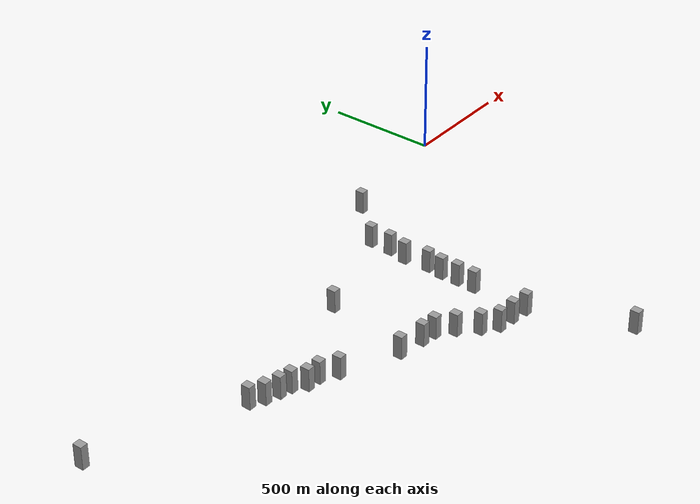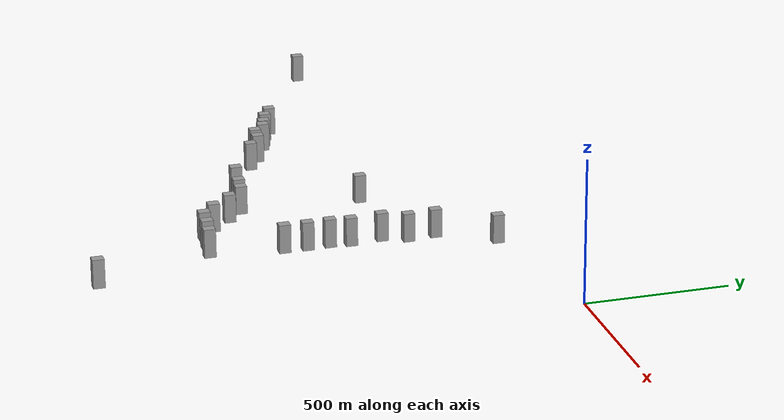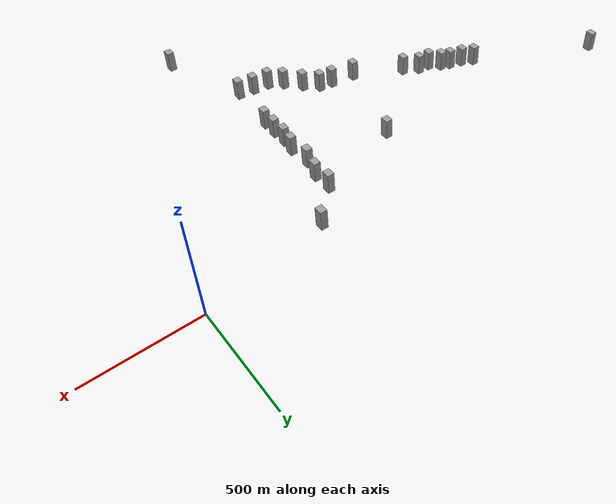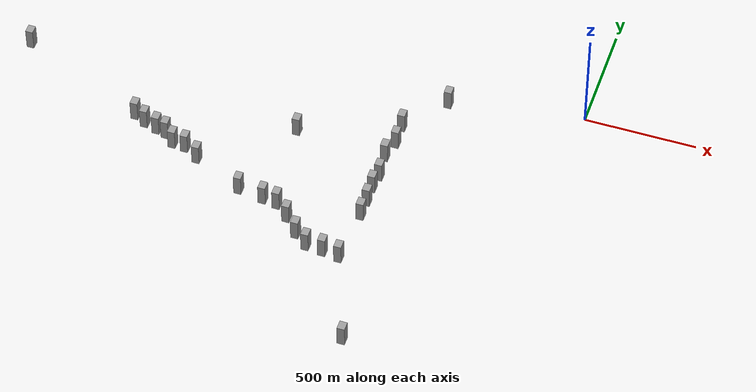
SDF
<sdf version="1.7">
 <world name="default">
  <model name="huge_building_131">
   <link name="link">
    <inertial>
     <mass>137299</mass>
     <inertia>
      <ixx>1.37911e+08</ixx>
      <ixy>0</ixy>
      <ixz>0</ixz>
      <iyy>1.32035e+08</iyy>
      <iyz>0</iyz>
      <izz>3.13216e+07</izz>
     </inertia>
    </inertial>
    <visual name="visual">
     <geometry><box><size>33.3468 40.3177 102.117</size></box></geometry>
     <material>
      <script><name>Gazebo/Grey</name><uri>file://media/materials/scripts/gazebo.material</uri></script>
      <shader type="pixel"/>
     </material>
    </visual>
    <collision name="collision">
     <geometry><box><size>33.3468 40.3177 102.117</size></box></geometry>
     <surface>
      <friction>
       <ode><mu>1</mu><mu2>1</mu2><fdir1>0 0 0</fdir1><slip1>0</slip1><slip2>0</slip2></ode>
       <torsional>
        <coefficient>1</coefficient>
        <patch_radius>0</patch_radius>
        <surface_radius>0</surface_radius>
        <use_patch_radius>1</use_patch_radius>
        <ode><slip>0</slip></ode>
       </torsional>
      </friction>
      <bounce><restitution_coefficient>0</restitution_coefficient><threshold>1e+06</threshold></bounce>
      <contact>
       <collide_without_contact>0</collide_without_contact>
       <collide_without_contact_bitmask>1</collide_without_contact_bitmask>
       <collide_bitmask>1</collide_bitmask>
       <ode>
        <soft_cfm>0</soft_cfm>
        <soft_erp>0.2</soft_erp>
        <kp>1e+13</kp>
        <kd>1</kd>
        <max_vel>0.01</max_vel>
        <min_depth>0</min_depth>
       </ode>
       <bullet>
        <split_impulse>1</split_impulse>
        <split_impulse_penetration_threshold>-0.01</split_impulse_penetration_threshold>
        <soft_cfm>0</soft_cfm>
        <soft_erp>0.2</soft_erp>
        <kp>1e+13</kp>
        <kd>1</kd>
       </bullet>
      </contact>
     </surface>
    </collision>
   </link>
   <static>0</static>
   <pose>-758.046 -721.537 25 0 -0 0</pose>
  </model>
  <model name="huge_building_132">
   <link name="link">
    <inertial>
     <mass>137299</mass>
     <inertia>
      <ixx>1.37911e+08</ixx>
      <ixy>0</ixy>
      <ixz>0</ixz>
      <iyy>1.32035e+08</iyy>
      <iyz>0</iyz>
      <izz>3.13216e+07</izz>
     </inertia>
    </inertial>
    <visual name="visual">
     <geometry><box><size>33.3468 40.3177 102.117</size></box></geometry>
     <material>
      <script><name>Gazebo/Grey</name><uri>file://media/materials/scripts/gazebo.material</uri></script>
      <shader type="pixel"/>
     </material>
    </visual>
    <collision name="collision">
     <geometry><box><size>33.3468 40.3177 102.117</size></box></geometry>
     <surface>
      <friction>
       <ode><mu>1</mu><mu2>1</mu2><fdir1>0 0 0</fdir1><slip1>0</slip1><slip2>0</slip2></ode>
       <torsional>
        <coefficient>1</coefficient>
        <patch_radius>0</patch_radius>
        <surface_radius>0</surface_radius>
        <use_patch_radius>1</use_patch_radius>
        <ode><slip>0</slip></ode>
       </torsional>
      </friction>
      <bounce><restitution_coefficient>0</restitution_coefficient><threshold>1e+06</threshold></bounce>
      <contact>
       <collide_without_contact>0</collide_without_contact>
       <collide_without_contact_bitmask>1</collide_without_contact_bitmask>
       <collide_bitmask>1</collide_bitmask>
       <ode>
        <soft_cfm>0</soft_cfm>
        <soft_erp>0.2</soft_erp>
        <kp>1e+13</kp>
        <kd>1</kd>
        <max_vel>0.01</max_vel>
        <min_depth>0</min_depth>
       </ode>
       <bullet>
        <split_impulse>1</split_impulse>
        <split_impulse_penetration_threshold>-0.01</split_impulse_penetration_threshold>
        <soft_cfm>0</soft_cfm>
        <soft_erp>0.2</soft_erp>
        <kp>1e+13</kp>
        <kd>1</kd>
       </bullet>
      </contact>
     </surface>
    </collision>
   </link>
   <static>0</static>
   <pose>-760.644 -642.928 25 0 -0 0</pose>
  </model>
  <model name="huge_building_133">
   <link name="link">
    <inertial>
     <mass>137299</mass>
     <inertia>
      <ixx>1.37911e+08</ixx>
      <ixy>0</ixy>
      <ixz>0</ixz>
      <iyy>1.32035e+08</iyy>
      <iyz>0</iyz>
      <izz>3.13216e+07</izz>
     </inertia>
    </inertial>
    <visual name="visual">
     <geometry><box><size>33.3468 40.3177 102.117</size></box></geometry>
     <material>
      <script><name>Gazebo/Grey</name><uri>file://media/materials/scripts/gazebo.material</uri></script>
      <shader type="pixel"/>
     </material>
    </visual>
    <collision name="collision">
     <geometry><box><size>33.3468 40.3177 102.117</size></box></geometry>
     <surface>
      <friction>
       <ode><mu>1</mu><mu2>1</mu2><fdir1>0 0 0</fdir1><slip1>0</slip1><slip2>0</slip2></ode>
       <torsional>
        <coefficient>1</coefficient>
        <patch_radius>0</patch_radius>
        <surface_radius>0</surface_radius>
        <use_patch_radius>1</use_patch_radius>
        <ode><slip>0</slip></ode>
       </torsional>
      </friction>
      <bounce><restitution_coefficient>0</restitution_coefficient><threshold>1e+06</threshold></bounce>
      <contact>
       <collide_without_contact>0</collide_without_contact>
       <collide_without_contact_bitmask>1</collide_without_contact_bitmask>
       <collide_bitmask>1</collide_bitmask>
       <ode>
        <soft_cfm>0</soft_cfm>
        <soft_erp>0.2</soft_erp>
        <kp>1e+13</kp>
        <kd>1</kd>
        <max_vel>0.01</max_vel>
        <min_depth>0</min_depth>
       </ode>
       <bullet>
        <split_impulse>1</split_impulse>
        <split_impulse_penetration_threshold>-0.01</split_impulse_penetration_threshold>
        <soft_cfm>0</soft_cfm>
        <soft_erp>0.2</soft_erp>
        <kp>1e+13</kp>
        <kd>1</kd>
       </bullet>
      </contact>
     </surface>
    </collision>
   </link>
   <static>0</static>
   <pose>-752.26 -571.161 25 0 -0 0</pose>
  </model>
  <model name="huge_building_134">
   <link name="link">
    <inertial>
     <mass>137299</mass>
     <inertia>
      <ixx>1.37911e+08</ixx>
      <ixy>0</ixy>
      <ixz>0</ixz>
      <iyy>1.32035e+08</iyy>
      <iyz>0</iyz>
      <izz>3.13216e+07</izz>
     </inertia>
    </inertial>
    <visual name="visual">
     <geometry><box><size>33.3468 40.3177 102.117</size></box></geometry>
     <material>
      <script><name>Gazebo/Grey</name><uri>file://media/materials/scripts/gazebo.material</uri></script>
      <shader type="pixel"/>
     </material>
    </visual>
    <collision name="collision">
     <geometry><box><size>33.3468 40.3177 102.117</size></box></geometry>
     <surface>
      <friction>
       <ode><mu>1</mu><mu2>1</mu2><fdir1>0 0 0</fdir1><slip1>0</slip1><slip2>0</slip2></ode>
       <torsional>
        <coefficient>1</coefficient>
        <patch_radius>0</patch_radius>
        <surface_radius>0</surface_radius>
        <use_patch_radius>1</use_patch_radius>
        <ode><slip>0</slip></ode>
       </torsional>
      </friction>
      <bounce><restitution_coefficient>0</restitution_coefficient><threshold>1e+06</threshold></bounce>
      <contact>
       <collide_without_contact>0</collide_without_contact>
       <collide_without_contact_bitmask>1</collide_without_contact_bitmask>
       <collide_bitmask>1</collide_bitmask>
       <ode>
        <soft_cfm>0</soft_cfm>
        <soft_erp>0.2</soft_erp>
        <kp>1e+13</kp>
        <kd>1</kd>
        <max_vel>0.01</max_vel>
        <min_depth>0</min_depth>
       </ode>
       <bullet>
        <split_impulse>1</split_impulse>
        <split_impulse_penetration_threshold>-0.01</split_impulse_penetration_threshold>
        <soft_cfm>0</soft_cfm>
        <soft_erp>0.2</soft_erp>
        <kp>1e+13</kp>
        <kd>1</kd>
       </bullet>
      </contact>
     </surface>
    </collision>
   </link>
   <static>0</static>
   <pose>-763.434 -459.57 25 0 -0 0</pose>
  </model>
  <model name="huge_building_135">
   <link name="link">
    <inertial>
     <mass>137299</mass>
     <inertia>
      <ixx>1.37911e+08</ixx>
      <ixy>0</ixy>
      <ixz>0</ixz>
      <iyy>1.32035e+08</iyy>
      <iyz>0</iyz>
      <izz>3.13216e+07</izz>
     </inertia>
    </inertial>
    <visual name="visual">
     <geometry><box><size>33.3468 40.3177 102.117</size></box></geometry>
     <material>
      <script><name>Gazebo/Grey</name><uri>file://media/materials/scripts/gazebo.material</uri></script>
      <shader type="pixel"/>
     </material>
    </visual>
    <collision name="collision">
     <geometry><box><size>33.3468 40.3177 102.117</size></box></geometry>
     <surface>
      <friction>
       <ode><mu>1</mu><mu2>1</mu2><fdir1>0 0 0</fdir1><slip1>0</slip1><slip2>0</slip2></ode>
       <torsional>
        <coefficient>1</coefficient>
        <patch_radius>0</patch_radius>
        <surface_radius>0</surface_radius>
        <use_patch_radius>1</use_patch_radius>
        <ode><slip>0</slip></ode>
       </torsional>
      </friction>
      <bounce><restitution_coefficient>0</restitution_coefficient><threshold>1e+06</threshold></bounce>
      <contact>
       <collide_without_contact>0</collide_without_contact>
       <collide_without_contact_bitmask>1</collide_without_contact_bitmask>
       <collide_bitmask>1</collide_bitmask>
       <ode>
        <soft_cfm>0</soft_cfm>
        <soft_erp>0.2</soft_erp>
        <kp>1e+13</kp>
        <kd>1</kd>
        <max_vel>0.01</max_vel>
        <min_depth>0</min_depth>
       </ode>
       <bullet>
        <split_impulse>1</split_impulse>
        <split_impulse_penetration_threshold>-0.01</split_impulse_penetration_threshold>
        <soft_cfm>0</soft_cfm>
        <soft_erp>0.2</soft_erp>
        <kp>1e+13</kp>
        <kd>1</kd>
       </bullet>
      </contact>
     </surface>
    </collision>
   </link>
   <static>0</static>
   <pose>-743.608 -370.234 20 0 -0 0</pose>
  </model>
  <model name="huge_building_136">
   <link name="link">
    <inertial>
     <mass>137299</mass>
     <inertia>
      <ixx>1.37911e+08</ixx>
      <ixy>0</ixy>
      <ixz>0</ixz>
      <iyy>1.32035e+08</iyy>
      <iyz>0</iyz>
      <izz>3.13216e+07</izz>
     </inertia>
    </inertial>
    <visual name="visual">
     <geometry><box><size>33.3468 40.3177 102.117</size></box></geometry>
     <material>
      <script><name>Gazebo/Grey</name><uri>file://media/materials/scripts/gazebo.material</uri></script>
      <shader type="pixel"/>
     </material>
    </visual>
    <collision name="collision">
     <geometry><box><size>33.3468 40.3177 102.117</size></box></geometry>
     <surface>
      <friction>
       <ode><mu>1</mu><mu2>1</mu2><fdir1>0 0 0</fdir1><slip1>0</slip1><slip2>0</slip2></ode>
       <torsional>
        <coefficient>1</coefficient>
        <patch_radius>0</patch_radius>
        <surface_radius>0</surface_radius>
        <use_patch_radius>1</use_patch_radius>
        <ode><slip>0</slip></ode>
       </torsional>
      </friction>
      <bounce><restitution_coefficient>0</restitution_coefficient><threshold>1e+06</threshold></bounce>
      <contact>
       <collide_without_contact>0</collide_without_contact>
       <collide_without_contact_bitmask>1</collide_without_contact_bitmask>
       <collide_bitmask>1</collide_bitmask>
       <ode>
        <soft_cfm>0</soft_cfm>
        <soft_erp>0.2</soft_erp>
        <kp>1e+13</kp>
        <kd>1</kd>
        <max_vel>0.01</max_vel>
        <min_depth>0</min_depth>
       </ode>
       <bullet>
        <split_impulse>1</split_impulse>
        <split_impulse_penetration_threshold>-0.01</split_impulse_penetration_threshold>
        <soft_cfm>0</soft_cfm>
        <soft_erp>0.2</soft_erp>
        <kp>1e+13</kp>
        <kd>1</kd>
       </bullet>
      </contact>
     </surface>
    </collision>
   </link>
   <static>0</static>
   <pose>-746.695 -273.359 23 0 -0 0</pose>
  </model>
  <model name="huge_building_138">
   <link name="link">
    <inertial>
     <mass>137299</mass>
     <inertia>
      <ixx>1.37911e+08</ixx>
      <ixy>0</ixy>
      <ixz>0</ixz>
      <iyy>1.32035e+08</iyy>
      <iyz>0</iyz>
      <izz>3.13216e+07</izz>
     </inertia>
    </inertial>
    <visual name="visual">
     <geometry><box><size>33.3468 40.3177 102.117</size></box></geometry>
     <material>
      <script><name>Gazebo/Grey</name><uri>file://media/materials/scripts/gazebo.material</uri></script>
      <shader type="pixel"/>
     </material>
    </visual>
    <collision name="collision">
     <geometry><box><size>33.3468 40.3177 102.117</size></box></geometry>
     <surface>
      <friction>
       <ode><mu>1</mu><mu2>1</mu2><fdir1>0 0 0</fdir1><slip1>0</slip1><slip2>0</slip2></ode>
       <torsional>
        <coefficient>1</coefficient>
        <patch_radius>0</patch_radius>
        <surface_radius>0</surface_radius>
        <use_patch_radius>1</use_patch_radius>
        <ode><slip>0</slip></ode>
       </torsional>
      </friction>
      <bounce><restitution_coefficient>0</restitution_coefficient><threshold>1e+06</threshold></bounce>
      <contact>
       <collide_without_contact>0</collide_without_contact>
       <collide_without_contact_bitmask>1</collide_without_contact_bitmask>
       <collide_bitmask>1</collide_bitmask>
       <ode>
        <soft_cfm>0</soft_cfm>
        <soft_erp>0.2</soft_erp>
        <kp>1e+13</kp>
        <kd>1</kd>
        <max_vel>0.01</max_vel>
        <min_depth>0</min_depth>
       </ode>
       <bullet>
        <split_impulse>1</split_impulse>
        <split_impulse_penetration_threshold>-0.01</split_impulse_penetration_threshold>
        <soft_cfm>0</soft_cfm>
        <soft_erp>0.2</soft_erp>
        <kp>1e+13</kp>
        <kd>1</kd>
       </bullet>
      </contact>
     </surface>
    </collision>
   </link>
   <static>0</static>
   <pose>-758.682 -802.767 25 0 -0 0</pose>
  </model>
  <model name="huge_building_139">
   <link name="link">
    <inertial>
     <mass>137299</mass>
     <inertia>
      <ixx>1.37911e+08</ixx>
      <ixy>0</ixy>
      <ixz>0</ixz>
      <iyy>1.32035e+08</iyy>
      <iyz>0</iyz>
      <izz>3.13216e+07</izz>
     </inertia>
    </inertial>
    <visual name="visual">
     <geometry><box><size>33.3468 40.3177 102.117</size></box></geometry>
     <material>
      <script><name>Gazebo/Grey</name><uri>file://media/materials/scripts/gazebo.material</uri></script>
      <shader type="pixel"/>
     </material>
    </visual>
    <collision name="collision">
     <geometry><box><size>33.3468 40.3177 102.117</size></box></geometry>
     <surface>
      <friction>
       <ode><mu>1</mu><mu2>1</mu2><fdir1>0 0 0</fdir1><slip1>0</slip1><slip2>0</slip2></ode>
       <torsional>
        <coefficient>1</coefficient>
        <patch_radius>0</patch_radius>
        <surface_radius>0</surface_radius>
        <use_patch_radius>1</use_patch_radius>
        <ode><slip>0</slip></ode>
       </torsional>
      </friction>
      <bounce><restitution_coefficient>0</restitution_coefficient><threshold>1e+06</threshold></bounce>
      <contact>
       <collide_without_contact>0</collide_without_contact>
       <collide_without_contact_bitmask>1</collide_without_contact_bitmask>
       <collide_bitmask>1</collide_bitmask>
       <ode>
        <soft_cfm>0</soft_cfm>
        <soft_erp>0.2</soft_erp>
        <kp>1e+13</kp>
        <kd>1</kd>
        <max_vel>0.01</max_vel>
        <min_depth>0</min_depth>
       </ode>
       <bullet>
        <split_impulse>1</split_impulse>
        <split_impulse_penetration_threshold>-0.01</split_impulse_penetration_threshold>
        <soft_cfm>0</soft_cfm>
        <soft_erp>0.2</soft_erp>
        <kp>1e+13</kp>
        <kd>1</kd>
       </bullet>
      </contact>
     </surface>
    </collision>
   </link>
   <static>0</static>
   <pose>-771.371 -1058.88 35 0 -0 0</pose>
  </model>
  <model name="huge_building_140">
   <link name="link">
    <inertial>
     <mass>137299</mass>
     <inertia>
      <ixx>1.37911e+08</ixx>
      <ixy>0</ixy>
      <ixz>0</ixz>
      <iyy>1.32035e+08</iyy>
      <iyz>0</iyz>
      <izz>3.13216e+07</izz>
     </inertia>
    </inertial>
    <visual name="visual">
     <geometry><box><size>33.3468 40.3177 102.117</size></box></geometry>
     <material>
      <script><name>Gazebo/Grey</name><uri>file://media/materials/scripts/gazebo.material</uri></script>
      <shader type="pixel"/>
     </material>
    </visual>
    <collision name="collision">
     <geometry><box><size>33.3468 40.3177 102.117</size></box></geometry>
     <surface>
      <friction>
       <ode><mu>1</mu><mu2>1</mu2><fdir1>0 0 0</fdir1><slip1>0</slip1><slip2>0</slip2></ode>
       <torsional>
        <coefficient>1</coefficient>
        <patch_radius>0</patch_radius>
        <surface_radius>0</surface_radius>
        <use_patch_radius>1</use_patch_radius>
        <ode><slip>0</slip></ode>
       </torsional>
      </friction>
      <bounce><restitution_coefficient>0</restitution_coefficient><threshold>1e+06</threshold></bounce>
      <contact>
       <collide_without_contact>0</collide_without_contact>
       <collide_without_contact_bitmask>1</collide_without_contact_bitmask>
       <collide_bitmask>1</collide_bitmask>
       <ode>
        <soft_cfm>0</soft_cfm>
        <soft_erp>0.2</soft_erp>
        <kp>1e+13</kp>
        <kd>1</kd>
        <max_vel>0.01</max_vel>
        <min_depth>0</min_depth>
       </ode>
       <bullet>
        <split_impulse>1</split_impulse>
        <split_impulse_penetration_threshold>-0.01</split_impulse_penetration_threshold>
        <soft_cfm>0</soft_cfm>
        <soft_erp>0.2</soft_erp>
        <kp>1e+13</kp>
        <kd>1</kd>
       </bullet>
      </contact>
     </surface>
    </collision>
   </link>
   <static>0</static>
   <pose>-846.893 -1048.65 35 0 -0 0</pose>
  </model>
  <model name="huge_building_141">
   <link name="link">
    <inertial>
     <mass>137299</mass>
     <inertia>
      <ixx>1.37911e+08</ixx>
      <ixy>0</ixy>
      <ixz>0</ixz>
      <iyy>1.32035e+08</iyy>
      <iyz>0</iyz>
      <izz>3.13216e+07</izz>
     </inertia>
    </inertial>
    <visual name="visual">
     <geometry><box><size>33.3468 40.3177 102.117</size></box></geometry>
     <material>
      <script><name>Gazebo/Grey</name><uri>file://media/materials/scripts/gazebo.material</uri></script>
      <shader type="pixel"/>
     </material>
    </visual>
    <collision name="collision">
     <geometry><box><size>33.3468 40.3177 102.117</size></box></geometry>
     <surface>
      <friction>
       <ode><mu>1</mu><mu2>1</mu2><fdir1>0 0 0</fdir1><slip1>0</slip1><slip2>0</slip2></ode>
       <torsional>
        <coefficient>1</coefficient>
        <patch_radius>0</patch_radius>
        <surface_radius>0</surface_radius>
        <use_patch_radius>1</use_patch_radius>
        <ode><slip>0</slip></ode>
       </torsional>
      </friction>
      <bounce><restitution_coefficient>0</restitution_coefficient><threshold>1e+06</threshold></bounce>
      <contact>
       <collide_without_contact>0</collide_without_contact>
       <collide_without_contact_bitmask>1</collide_without_contact_bitmask>
       <collide_bitmask>1</collide_bitmask>
       <ode>
        <soft_cfm>0</soft_cfm>
        <soft_erp>0.2</soft_erp>
        <kp>1e+13</kp>
        <kd>1</kd>
        <max_vel>0.01</max_vel>
        <min_depth>0</min_depth>
       </ode>
       <bullet>
        <split_impulse>1</split_impulse>
        <split_impulse_penetration_threshold>-0.01</split_impulse_penetration_threshold>
        <soft_cfm>0</soft_cfm>
        <soft_erp>0.2</soft_erp>
        <kp>1e+13</kp>
        <kd>1</kd>
       </bullet>
      </contact>
     </surface>
    </collision>
   </link>
   <static>0</static>
   <pose>-924.248 -1041.06 35 0 -0 0</pose>
  </model>
  <model name="huge_building_142">
   <link name="link">
    <inertial>
     <mass>137299</mass>
     <inertia>
      <ixx>1.37911e+08</ixx>
      <ixy>0</ixy>
      <ixz>0</ixz>
      <iyy>1.32035e+08</iyy>
      <iyz>0</iyz>
      <izz>3.13216e+07</izz>
     </inertia>
    </inertial>
    <visual name="visual">
     <geometry><box><size>33.3468 40.3177 102.117</size></box></geometry>
     <material>
      <script><name>Gazebo/Grey</name><uri>file://media/materials/scripts/gazebo.material</uri></script>
      <shader type="pixel"/>
     </material>
    </visual>
    <collision name="collision">
     <geometry><box><size>33.3468 40.3177 102.117</size></box></geometry>
     <surface>
      <friction>
       <ode><mu>1</mu><mu2>1</mu2><fdir1>0 0 0</fdir1><slip1>0</slip1><slip2>0</slip2></ode>
       <torsional>
        <coefficient>1</coefficient>
        <patch_radius>0</patch_radius>
        <surface_radius>0</surface_radius>
        <use_patch_radius>1</use_patch_radius>
        <ode><slip>0</slip></ode>
       </torsional>
      </friction>
      <bounce><restitution_coefficient>0</restitution_coefficient><threshold>1e+06</threshold></bounce>
      <contact>
       <collide_without_contact>0</collide_without_contact>
       <collide_without_contact_bitmask>1</collide_without_contact_bitmask>
       <collide_bitmask>1</collide_bitmask>
       <ode>
        <soft_cfm>0</soft_cfm>
        <soft_erp>0.2</soft_erp>
        <kp>1e+13</kp>
        <kd>1</kd>
        <max_vel>0.01</max_vel>
        <min_depth>0</min_depth>
       </ode>
       <bullet>
        <split_impulse>1</split_impulse>
        <split_impulse_penetration_threshold>-0.01</split_impulse_penetration_threshold>
        <soft_cfm>0</soft_cfm>
        <soft_erp>0.2</soft_erp>
        <kp>1e+13</kp>
        <kd>1</kd>
       </bullet>
      </contact>
     </surface>
    </collision>
   </link>
   <static>0</static>
   <pose>-986.086 -993.867 35 0 -0 0</pose>
  </model>
  <model name="huge_building_143">
   <link name="link">
    <inertial>
     <mass>137299</mass>
     <inertia>
      <ixx>1.37911e+08</ixx>
      <ixy>0</ixy>
      <ixz>0</ixz>
      <iyy>1.32035e+08</iyy>
      <iyz>0</iyz>
      <izz>3.13216e+07</izz>
     </inertia>
    </inertial>
    <visual name="visual">
     <geometry><box><size>33.3468 40.3177 102.117</size></box></geometry>
     <material>
      <script><name>Gazebo/Grey</name><uri>file://media/materials/scripts/gazebo.material</uri></script>
      <shader type="pixel"/>
     </material>
    </visual>
    <collision name="collision">
     <geometry><box><size>33.3468 40.3177 102.117</size></box></geometry>
     <surface>
      <friction>
       <ode><mu>1</mu><mu2>1</mu2><fdir1>0 0 0</fdir1><slip1>0</slip1><slip2>0</slip2></ode>
       <torsional>
        <coefficient>1</coefficient>
        <patch_radius>0</patch_radius>
        <surface_radius>0</surface_radius>
        <use_patch_radius>1</use_patch_radius>
        <ode><slip>0</slip></ode>
       </torsional>
      </friction>
      <bounce><restitution_coefficient>0</restitution_coefficient><threshold>1e+06</threshold></bounce>
      <contact>
       <collide_without_contact>0</collide_without_contact>
       <collide_without_contact_bitmask>1</collide_without_contact_bitmask>
       <collide_bitmask>1</collide_bitmask>
       <ode>
        <soft_cfm>0</soft_cfm>
        <soft_erp>0.2</soft_erp>
        <kp>1e+13</kp>
        <kd>1</kd>
        <max_vel>0.01</max_vel>
        <min_depth>0</min_depth>
       </ode>
       <bullet>
        <split_impulse>1</split_impulse>
        <split_impulse_penetration_threshold>-0.01</split_impulse_penetration_threshold>
        <soft_cfm>0</soft_cfm>
        <soft_erp>0.2</soft_erp>
        <kp>1e+13</kp>
        <kd>1</kd>
       </bullet>
      </contact>
     </surface>
    </collision>
   </link>
   <static>0</static>
   <pose>-1051.47 -922.444 35 0 -0 0</pose>
  </model>
  <model name="huge_building_144">
   <link name="link">
    <inertial>
     <mass>137299</mass>
     <inertia>
      <ixx>1.37911e+08</ixx>
      <ixy>0</ixy>
      <ixz>0</ixz>
      <iyy>1.32035e+08</iyy>
      <iyz>0</iyz>
      <izz>3.13216e+07</izz>
     </inertia>
    </inertial>
    <visual name="visual">
     <geometry><box><size>33.3468 40.3177 102.117</size></box></geometry>
     <material>
      <script><name>Gazebo/Grey</name><uri>file://media/materials/scripts/gazebo.material</uri></script>
      <shader type="pixel"/>
     </material>
    </visual>
    <collision name="collision">
     <geometry><box><size>33.3468 40.3177 102.117</size></box></geometry>
     <surface>
      <friction>
       <ode><mu>1</mu><mu2>1</mu2><fdir1>0 0 0</fdir1><slip1>0</slip1><slip2>0</slip2></ode>
       <torsional>
        <coefficient>1</coefficient>
        <patch_radius>0</patch_radius>
        <surface_radius>0</surface_radius>
        <use_patch_radius>1</use_patch_radius>
        <ode><slip>0</slip></ode>
       </torsional>
      </friction>
      <bounce><restitution_coefficient>0</restitution_coefficient><threshold>1e+06</threshold></bounce>
      <contact>
       <collide_without_contact>0</collide_without_contact>
       <collide_without_contact_bitmask>1</collide_without_contact_bitmask>
       <collide_bitmask>1</collide_bitmask>
       <ode>
        <soft_cfm>0</soft_cfm>
        <soft_erp>0.2</soft_erp>
        <kp>1e+13</kp>
        <kd>1</kd>
        <max_vel>0.01</max_vel>
        <min_depth>0</min_depth>
       </ode>
       <bullet>
        <split_impulse>1</split_impulse>
        <split_impulse_penetration_threshold>-0.01</split_impulse_penetration_threshold>
        <soft_cfm>0</soft_cfm>
        <soft_erp>0.2</soft_erp>
        <kp>1e+13</kp>
        <kd>1</kd>
       </bullet>
      </contact>
     </surface>
    </collision>
   </link>
   <static>0</static>
   <pose>-1114.85 -867.131 35 0 -0 0</pose>
  </model>
  <model name="huge_building_145">
   <link name="link">
    <inertial>
     <mass>137299</mass>
     <inertia>
      <ixx>1.37911e+08</ixx>
      <ixy>0</ixy>
      <ixz>0</ixz>
      <iyy>1.32035e+08</iyy>
      <iyz>0</iyz>
      <izz>3.13216e+07</izz>
     </inertia>
    </inertial>
    <visual name="visual">
     <geometry><box><size>33.3468 40.3177 102.117</size></box></geometry>
     <material>
      <script><name>Gazebo/Grey</name><uri>file://media/materials/scripts/gazebo.material</uri></script>
      <shader type="pixel"/>
     </material>
    </visual>
    <collision name="collision">
     <geometry><box><size>33.3468 40.3177 102.117</size></box></geometry>
     <surface>
      <friction>
       <ode><mu>1</mu><mu2>1</mu2><fdir1>0 0 0</fdir1><slip1>0</slip1><slip2>0</slip2></ode>
       <torsional>
        <coefficient>1</coefficient>
        <patch_radius>0</patch_radius>
        <surface_radius>0</surface_radius>
        <use_patch_radius>1</use_patch_radius>
        <ode><slip>0</slip></ode>
       </torsional>
      </friction>
      <bounce><restitution_coefficient>0</restitution_coefficient><threshold>1e+06</threshold></bounce>
      <contact>
       <collide_without_contact>0</collide_without_contact>
       <collide_without_contact_bitmask>1</collide_without_contact_bitmask>
       <collide_bitmask>1</collide_bitmask>
       <ode>
        <soft_cfm>0</soft_cfm>
        <soft_erp>0.2</soft_erp>
        <kp>1e+13</kp>
        <kd>1</kd>
        <max_vel>0.01</max_vel>
        <min_depth>0</min_depth>
       </ode>
       <bullet>
        <split_impulse>1</split_impulse>
        <split_impulse_penetration_threshold>-0.01</split_impulse_penetration_threshold>
        <soft_cfm>0</soft_cfm>
        <soft_erp>0.2</soft_erp>
        <kp>1e+13</kp>
        <kd>1</kd>
       </bullet>
      </contact>
     </surface>
    </collision>
   </link>
   <static>0</static>
   <pose>-1181.26 -858.132 35 0 -0 0</pose>
  </model>
  <model name="huge_building_146">
   <link name="link">
    <inertial>
     <mass>137299</mass>
     <inertia>
      <ixx>1.37911e+08</ixx>
      <ixy>0</ixy>
      <ixz>0</ixz>
      <iyy>1.32035e+08</iyy>
      <iyz>0</iyz>
      <izz>3.13216e+07</izz>
     </inertia>
    </inertial>
    <visual name="visual">
     <geometry><box><size>33.3468 40.3177 102.117</size></box></geometry>
     <material>
      <script><name>Gazebo/Grey</name><uri>file://media/materials/scripts/gazebo.material</uri></script>
      <shader type="pixel"/>
     </material>
    </visual>
    <collision name="collision">
     <geometry><box><size>33.3468 40.3177 102.117</size></box></geometry>
     <surface>
      <friction>
       <ode><mu>1</mu><mu2>1</mu2><fdir1>0 0 0</fdir1><slip1>0</slip1><slip2>0</slip2></ode>
       <torsional>
        <coefficient>1</coefficient>
        <patch_radius>0</patch_radius>
        <surface_radius>0</surface_radius>
        <use_patch_radius>1</use_patch_radius>
        <ode><slip>0</slip></ode>
       </torsional>
      </friction>
      <bounce><restitution_coefficient>0</restitution_coefficient><threshold>1e+06</threshold></bounce>
      <contact>
       <collide_without_contact>0</collide_without_contact>
       <collide_without_contact_bitmask>1</collide_without_contact_bitmask>
       <collide_bitmask>1</collide_bitmask>
       <ode>
        <soft_cfm>0</soft_cfm>
        <soft_erp>0.2</soft_erp>
        <kp>1e+13</kp>
        <kd>1</kd>
        <max_vel>0.01</max_vel>
        <min_depth>0</min_depth>
       </ode>
       <bullet>
        <split_impulse>1</split_impulse>
        <split_impulse_penetration_threshold>-0.01</split_impulse_penetration_threshold>
        <soft_cfm>0</soft_cfm>
        <soft_erp>0.2</soft_erp>
        <kp>1e+13</kp>
        <kd>1</kd>
       </bullet>
      </contact>
     </surface>
    </collision>
   </link>
   <static>0</static>
   <pose>-1298.21 -839.876 35 0 -0 0</pose>
  </model>
  <model name="huge_building_147">
   <link name="link">
    <inertial>
     <mass>137299</mass>
     <inertia>
      <ixx>1.37911e+08</ixx>
      <ixy>0</ixy>
      <ixz>0</ixz>
      <iyy>1.32035e+08</iyy>
      <iyz>0</iyz>
      <izz>3.13216e+07</izz>
     </inertia>
    </inertial>
    <visual name="visual">
     <geometry><box><size>33.3468 40.3177 102.117</size></box></geometry>
     <material>
      <script><name>Gazebo/Grey</name><uri>file://media/materials/scripts/gazebo.material</uri></script>
      <shader type="pixel"/>
     </material>
    </visual>
    <collision name="collision">
     <geometry><box><size>33.3468 40.3177 102.117</size></box></geometry>
     <surface>
      <friction>
       <ode><mu>1</mu><mu2>1</mu2><fdir1>0 0 0</fdir1><slip1>0</slip1><slip2>0</slip2></ode>
       <torsional>
        <coefficient>1</coefficient>
        <patch_radius>0</patch_radius>
        <surface_radius>0</surface_radius>
        <use_patch_radius>1</use_patch_radius>
        <ode><slip>0</slip></ode>
       </torsional>
      </friction>
      <bounce><restitution_coefficient>0</restitution_coefficient><threshold>1e+06</threshold></bounce>
      <contact>
       <collide_without_contact>0</collide_without_contact>
       <collide_without_contact_bitmask>1</collide_without_contact_bitmask>
       <collide_bitmask>1</collide_bitmask>
       <ode>
        <soft_cfm>0</soft_cfm>
        <soft_erp>0.2</soft_erp>
        <kp>1e+13</kp>
        <kd>1</kd>
        <max_vel>0.01</max_vel>
        <min_depth>0</min_depth>
       </ode>
       <bullet>
        <split_impulse>1</split_impulse>
        <split_impulse_penetration_threshold>-0.01</split_impulse_penetration_threshold>
        <soft_cfm>0</soft_cfm>
        <soft_erp>0.2</soft_erp>
        <kp>1e+13</kp>
        <kd>1</kd>
       </bullet>
      </contact>
     </surface>
    </collision>
   </link>
   <static>0</static>
   <pose>-1530.18 -729.117 27 0 -0 0</pose>
  </model>
  <model name="huge_building_148">
   <link name="link">
    <inertial>
     <mass>137299</mass>
     <inertia>
      <ixx>1.37911e+08</ixx>
      <ixy>0</ixy>
      <ixz>0</ixz>
      <iyy>1.32035e+08</iyy>
      <iyz>0</iyz>
      <izz>3.13216e+07</izz>
     </inertia>
    </inertial>
    <visual name="visual">
     <geometry><box><size>33.3468 40.3177 102.117</size></box></geometry>
     <material>
      <script><name>Gazebo/Grey</name><uri>file://media/materials/scripts/gazebo.material</uri></script>
      <shader type="pixel"/>
     </material>
    </visual>
    <collision name="collision">
     <geometry><box><size>33.3468 40.3177 102.117</size></box></geometry>
     <surface>
      <friction>
       <ode><mu>1</mu><mu2>1</mu2><fdir1>0 0 0</fdir1><slip1>0</slip1><slip2>0</slip2></ode>
       <torsional>
        <coefficient>1</coefficient>
        <patch_radius>0</patch_radius>
        <surface_radius>0</surface_radius>
        <use_patch_radius>1</use_patch_radius>
        <ode><slip>0</slip></ode>
       </torsional>
      </friction>
      <bounce><restitution_coefficient>0</restitution_coefficient><threshold>1e+06</threshold></bounce>
      <contact>
       <collide_without_contact>0</collide_without_contact>
       <collide_without_contact_bitmask>1</collide_without_contact_bitmask>
       <collide_bitmask>1</collide_bitmask>
       <ode>
        <soft_cfm>0</soft_cfm>
        <soft_erp>0.2</soft_erp>
        <kp>1e+13</kp>
        <kd>1</kd>
        <max_vel>0.01</max_vel>
        <min_depth>0</min_depth>
       </ode>
       <bullet>
        <split_impulse>1</split_impulse>
        <split_impulse_penetration_threshold>-0.01</split_impulse_penetration_threshold>
        <soft_cfm>0</soft_cfm>
        <soft_erp>0.2</soft_erp>
        <kp>1e+13</kp>
        <kd>1</kd>
       </bullet>
      </contact>
     </surface>
    </collision>
   </link>
   <static>0</static>
   <pose>-1599 -685.962 27 0 -0 0</pose>
  </model>
  <model name="huge_building_149">
   <link name="link">
    <inertial>
     <mass>137299</mass>
     <inertia>
      <ixx>1.37911e+08</ixx>
      <ixy>0</ixy>
      <ixz>0</ixz>
      <iyy>1.32035e+08</iyy>
      <iyz>0</iyz>
      <izz>3.13216e+07</izz>
     </inertia>
    </inertial>
    <visual name="visual">
     <geometry><box><size>33.3468 40.3177 102.117</size></box></geometry>
     <material>
      <script><name>Gazebo/Grey</name><uri>file://media/materials/scripts/gazebo.material</uri></script>
      <shader type="pixel"/>
     </material>
    </visual>
    <collision name="collision">
     <geometry><box><size>33.3468 40.3177 102.117</size></box></geometry>
     <surface>
      <friction>
       <ode><mu>1</mu><mu2>1</mu2><fdir1>0 0 0</fdir1><slip1>0</slip1><slip2>0</slip2></ode>
       <torsional>
        <coefficient>1</coefficient>
        <patch_radius>0</patch_radius>
        <surface_radius>0</surface_radius>
        <use_patch_radius>1</use_patch_radius>
        <ode><slip>0</slip></ode>
       </torsional>
      </friction>
      <bounce><restitution_coefficient>0</restitution_coefficient><threshold>1e+06</threshold></bounce>
      <contact>
       <collide_without_contact>0</collide_without_contact>
       <collide_without_contact_bitmask>1</collide_without_contact_bitmask>
       <collide_bitmask>1</collide_bitmask>
       <ode>
        <soft_cfm>0</soft_cfm>
        <soft_erp>0.2</soft_erp>
        <kp>1e+13</kp>
        <kd>1</kd>
        <max_vel>0.01</max_vel>
        <min_depth>0</min_depth>
       </ode>
       <bullet>
        <split_impulse>1</split_impulse>
        <split_impulse_penetration_threshold>-0.01</split_impulse_penetration_threshold>
        <soft_cfm>0</soft_cfm>
        <soft_erp>0.2</soft_erp>
        <kp>1e+13</kp>
        <kd>1</kd>
       </bullet>
      </contact>
     </surface>
    </collision>
   </link>
   <static>0</static>
   <pose>-1658.38 -681.343 27 0 -0 0</pose>
  </model>
  <model name="huge_building_150">
   <link name="link">
    <inertial>
     <mass>137299</mass>
     <inertia>
      <ixx>1.37911e+08</ixx>
      <ixy>0</ixy>
      <ixz>0</ixz>
      <iyy>1.32035e+08</iyy>
      <iyz>0</iyz>
      <izz>3.13216e+07</izz>
     </inertia>
    </inertial>
    <visual name="visual">
     <geometry><box><size>33.3468 40.3177 102.117</size></box></geometry>
     <material>
      <script><name>Gazebo/Grey</name><uri>file://media/materials/scripts/gazebo.material</uri></script>
      <shader type="pixel"/>
     </material>
    </visual>
    <collision name="collision">
     <geometry><box><size>33.3468 40.3177 102.117</size></box></geometry>
     <surface>
      <friction>
       <ode><mu>1</mu><mu2>1</mu2><fdir1>0 0 0</fdir1><slip1>0</slip1><slip2>0</slip2></ode>
       <torsional>
        <coefficient>1</coefficient>
        <patch_radius>0</patch_radius>
        <surface_radius>0</surface_radius>
        <use_patch_radius>1</use_patch_radius>
        <ode><slip>0</slip></ode>
       </torsional>
      </friction>
      <bounce><restitution_coefficient>0</restitution_coefficient><threshold>1e+06</threshold></bounce>
      <contact>
       <collide_without_contact>0</collide_without_contact>
       <collide_without_contact_bitmask>1</collide_without_contact_bitmask>
       <collide_bitmask>1</collide_bitmask>
       <ode>
        <soft_cfm>0</soft_cfm>
        <soft_erp>0.2</soft_erp>
        <kp>1e+13</kp>
        <kd>1</kd>
        <max_vel>0.01</max_vel>
        <min_depth>0</min_depth>
       </ode>
       <bullet>
        <split_impulse>1</split_impulse>
        <split_impulse_penetration_threshold>-0.01</split_impulse_penetration_threshold>
        <soft_cfm>0</soft_cfm>
        <soft_erp>0.2</soft_erp>
        <kp>1e+13</kp>
        <kd>1</kd>
       </bullet>
      </contact>
     </surface>
    </collision>
   </link>
   <static>0</static>
   <pose>-1706.05 -639.861 27 0 -0 0</pose>
  </model>
  <model name="huge_building_151">
   <link name="link">
    <inertial>
     <mass>137299</mass>
     <inertia>
      <ixx>1.37911e+08</ixx>
      <ixy>0</ixy>
      <ixz>0</ixz>
      <iyy>1.32035e+08</iyy>
      <iyz>0</iyz>
      <izz>3.13216e+07</izz>
     </inertia>
    </inertial>
    <visual name="visual">
     <geometry><box><size>33.3468 40.3177 102.117</size></box></geometry>
     <material>
      <script><name>Gazebo/Grey</name><uri>file://media/materials/scripts/gazebo.material</uri></script>
      <shader type="pixel"/>
     </material>
    </visual>
    <collision name="collision">
     <geometry><box><size>33.3468 40.3177 102.117</size></box></geometry>
     <surface>
      <friction>
       <ode><mu>1</mu><mu2>1</mu2><fdir1>0 0 0</fdir1><slip1>0</slip1><slip2>0</slip2></ode>
       <torsional>
        <coefficient>1</coefficient>
        <patch_radius>0</patch_radius>
        <surface_radius>0</surface_radius>
        <use_patch_radius>1</use_patch_radius>
        <ode><slip>0</slip></ode>
       </torsional>
      </friction>
      <bounce><restitution_coefficient>0</restitution_coefficient><threshold>1e+06</threshold></bounce>
      <contact>
       <collide_without_contact>0</collide_without_contact>
       <collide_without_contact_bitmask>1</collide_without_contact_bitmask>
       <collide_bitmask>1</collide_bitmask>
       <ode>
        <soft_cfm>0</soft_cfm>
        <soft_erp>0.2</soft_erp>
        <kp>1e+13</kp>
        <kd>1</kd>
        <max_vel>0.01</max_vel>
        <min_depth>0</min_depth>
       </ode>
       <bullet>
        <split_impulse>1</split_impulse>
        <split_impulse_penetration_threshold>-0.01</split_impulse_penetration_threshold>
        <soft_cfm>0</soft_cfm>
        <soft_erp>0.2</soft_erp>
        <kp>1e+13</kp>
        <kd>1</kd>
       </bullet>
      </contact>
     </surface>
    </collision>
   </link>
   <static>0</static>
   <pose>-1754.07 -624.764 23 0 -0 0</pose>
  </model>
  <model name="huge_building_152">
   <link name="link">
    <inertial>
     <mass>137299</mass>
     <inertia>
      <ixx>1.37911e+08</ixx>
      <ixy>0</ixy>
      <ixz>0</ixz>
      <iyy>1.32035e+08</iyy>
      <iyz>0</iyz>
      <izz>3.13216e+07</izz>
     </inertia>
    </inertial>
    <visual name="visual">
     <geometry><box><size>33.3468 40.3177 102.117</size></box></geometry>
     <material>
      <script><name>Gazebo/Grey</name><uri>file://media/materials/scripts/gazebo.material</uri></script>
      <shader type="pixel"/>
     </material>
    </visual>
    <collision name="collision">
     <geometry><box><size>33.3468 40.3177 102.117</size></box></geometry>
     <surface>
      <friction>
       <ode><mu>1</mu><mu2>1</mu2><fdir1>0 0 0</fdir1><slip1>0</slip1><slip2>0</slip2></ode>
       <torsional>
        <coefficient>1</coefficient>
        <patch_radius>0</patch_radius>
        <surface_radius>0</surface_radius>
        <use_patch_radius>1</use_patch_radius>
        <ode><slip>0</slip></ode>
       </torsional>
      </friction>
      <bounce><restitution_coefficient>0</restitution_coefficient><threshold>1e+06</threshold></bounce>
      <contact>
       <collide_without_contact>0</collide_without_contact>
       <collide_without_contact_bitmask>1</collide_without_contact_bitmask>
       <collide_bitmask>1</collide_bitmask>
       <ode>
        <soft_cfm>0</soft_cfm>
        <soft_erp>0.2</soft_erp>
        <kp>1e+13</kp>
        <kd>1</kd>
        <max_vel>0.01</max_vel>
        <min_depth>0</min_depth>
       </ode>
       <bullet>
        <split_impulse>1</split_impulse>
        <split_impulse_penetration_threshold>-0.01</split_impulse_penetration_threshold>
        <soft_cfm>0</soft_cfm>
        <soft_erp>0.2</soft_erp>
        <kp>1e+13</kp>
        <kd>1</kd>
       </bullet>
      </contact>
     </surface>
    </collision>
   </link>
   <static>0</static>
   <pose>-1815.91 -605.911 23 0 -0 0</pose>
  </model>
  <model name="huge_building_153">
   <link name="link">
    <inertial>
     <mass>137299</mass>
     <inertia>
      <ixx>1.37911e+08</ixx>
      <ixy>0</ixy>
      <ixz>0</ixz>
      <iyy>1.32035e+08</iyy>
      <iyz>0</iyz>
      <izz>3.13216e+07</izz>
     </inertia>
    </inertial>
    <visual name="visual">
     <geometry><box><size>33.3468 40.3177 102.117</size></box></geometry>
     <material>
      <script><name>Gazebo/Grey</name><uri>file://media/materials/scripts/gazebo.material</uri></script>
      <shader type="pixel"/>
     </material>
    </visual>
    <collision name="collision">
     <geometry><box><size>33.3468 40.3177 102.117</size></box></geometry>
     <surface>
      <friction>
       <ode><mu>1</mu><mu2>1</mu2><fdir1>0 0 0</fdir1><slip1>0</slip1><slip2>0</slip2></ode>
       <torsional>
        <coefficient>1</coefficient>
        <patch_radius>0</patch_radius>
        <surface_radius>0</surface_radius>
        <use_patch_radius>1</use_patch_radius>
        <ode><slip>0</slip></ode>
       </torsional>
      </friction>
      <bounce><restitution_coefficient>0</restitution_coefficient><threshold>1e+06</threshold></bounce>
      <contact>
       <collide_without_contact>0</collide_without_contact>
       <collide_without_contact_bitmask>1</collide_without_contact_bitmask>
       <collide_bitmask>1</collide_bitmask>
       <ode>
        <soft_cfm>0</soft_cfm>
        <soft_erp>0.2</soft_erp>
        <kp>1e+13</kp>
        <kd>1</kd>
        <max_vel>0.01</max_vel>
        <min_depth>0</min_depth>
       </ode>
       <bullet>
        <split_impulse>1</split_impulse>
        <split_impulse_penetration_threshold>-0.01</split_impulse_penetration_threshold>
        <soft_cfm>0</soft_cfm>
        <soft_erp>0.2</soft_erp>
        <kp>1e+13</kp>
        <kd>1</kd>
       </bullet>
      </contact>
     </surface>
    </collision>
   </link>
   <static>0</static>
   <pose>-1871.1 -575.709 23 0 -0 0</pose>
  </model>
  <model name="huge_building_156">
   <link name="link">
    <inertial>
     <mass>137299</mass>
     <inertia>
      <ixx>1.37911e+08</ixx>
      <ixy>0</ixy>
      <ixz>0</ixz>
      <iyy>1.32035e+08</iyy>
      <iyz>0</iyz>
      <izz>3.13216e+07</izz>
     </inertia>
    </inertial>
    <visual name="visual">
     <geometry><box><size>33.3468 40.3177 102.117</size></box></geometry>
     <material>
      <script><name>Gazebo/Grey</name><uri>file://media/materials/scripts/gazebo.material</uri></script>
      <shader type="pixel"/>
     </material>
    </visual>
    <collision name="collision">
     <geometry><box><size>33.3468 40.3177 102.117</size></box></geometry>
     <surface>
      <friction>
       <ode><mu>1</mu><mu2>1</mu2><fdir1>0 0 0</fdir1><slip1>0</slip1><slip2>0</slip2></ode>
       <torsional>
        <coefficient>1</coefficient>
        <patch_radius>0</patch_radius>
        <surface_radius>0</surface_radius>
        <use_patch_radius>1</use_patch_radius>
        <ode><slip>0</slip></ode>
       </torsional>
      </friction>
      <bounce><restitution_coefficient>0</restitution_coefficient><threshold>1e+06</threshold></bounce>
      <contact>
       <collide_without_contact>0</collide_without_contact>
       <collide_without_contact_bitmask>1</collide_without_contact_bitmask>
       <collide_bitmask>1</collide_bitmask>
       <ode>
        <soft_cfm>0</soft_cfm>
        <soft_erp>0.2</soft_erp>
        <kp>1e+13</kp>
        <kd>1</kd>
        <max_vel>0.01</max_vel>
        <min_depth>0</min_depth>
       </ode>
       <bullet>
        <split_impulse>1</split_impulse>
        <split_impulse_penetration_threshold>-0.01</split_impulse_penetration_threshold>
        <soft_cfm>0</soft_cfm>
        <soft_erp>0.2</soft_erp>
        <kp>1e+13</kp>
        <kd>1</kd>
       </bullet>
      </contact>
     </surface>
    </collision>
   </link>
   <static>0</static>
   <pose>-590.199 -100.52 44 0 -0 0</pose>
  </model>
  <model name="huge_building_158">
   <link name="link">
    <inertial>
     <mass>137299</mass>
     <inertia>
      <ixx>1.37911e+08</ixx>
      <ixy>0</ixy>
      <ixz>0</ixz>
      <iyy>1.32035e+08</iyy>
      <iyz>0</iyz>
      <izz>3.13216e+07</izz>
     </inertia>
    </inertial>
    <visual name="visual">
     <geometry><box><size>33.3468 40.3177 102.117</size></box></geometry>
     <material>
      <script><name>Gazebo/Grey</name><uri>file://media/materials/scripts/gazebo.material</uri></script>
      <shader type="pixel"/>
     </material>
    </visual>
    <collision name="collision">
     <geometry><box><size>33.3468 40.3177 102.117</size></box></geometry>
     <surface>
      <friction>
       <ode><mu>1</mu><mu2>1</mu2><fdir1>0 0 0</fdir1><slip1>0</slip1><slip2>0</slip2></ode>
       <torsional>
        <coefficient>1</coefficient>
        <patch_radius>0</patch_radius>
        <surface_radius>0</surface_radius>
        <use_patch_radius>1</use_patch_radius>
        <ode><slip>0</slip></ode>
       </torsional>
      </friction>
      <bounce><restitution_coefficient>0</restitution_coefficient><threshold>1e+06</threshold></bounce>
      <contact>
       <collide_without_contact>0</collide_without_contact>
       <collide_without_contact_bitmask>1</collide_without_contact_bitmask>
       <collide_bitmask>1</collide_bitmask>
       <ode>
        <soft_cfm>0</soft_cfm>
        <soft_erp>0.2</soft_erp>
        <kp>1e+13</kp>
        <kd>1</kd>
        <max_vel>0.01</max_vel>
        <min_depth>0</min_depth>
       </ode>
       <bullet>
        <split_impulse>1</split_impulse>
        <split_impulse_penetration_threshold>-0.01</split_impulse_penetration_threshold>
        <soft_cfm>0</soft_cfm>
        <soft_erp>0.2</soft_erp>
        <kp>1e+13</kp>
        <kd>1</kd>
       </bullet>
      </contact>
     </surface>
    </collision>
   </link>
   <static>0</static>
   <pose>-1179.72 -419.972 0 0 -0 0</pose>
  </model>
  <model name="huge_building_177">
   <link name="link">
    <inertial>
     <mass>137299</mass>
     <inertia>
      <ixx>1.37911e+08</ixx>
      <ixy>0</ixy>
      <ixz>0</ixz>
      <iyy>1.32035e+08</iyy>
      <iyz>0</iyz>
      <izz>3.13216e+07</izz>
     </inertia>
    </inertial>
    <visual name="visual">
     <geometry><box><size>33.3468 40.3177 102.117</size></box></geometry>
     <material>
      <script><name>Gazebo/Grey</name><uri>file://media/materials/scripts/gazebo.material</uri></script>
      <shader type="pixel"/>
     </material>
    </visual>
    <collision name="collision">
     <geometry><box><size>33.3468 40.3177 102.117</size></box></geometry>
     <surface>
      <friction>
       <ode><mu>1</mu><mu2>1</mu2><fdir1>0 0 0</fdir1><slip1>0</slip1><slip2>0</slip2></ode>
       <torsional>
        <coefficient>1</coefficient>
        <patch_radius>0</patch_radius>
        <surface_radius>0</surface_radius>
        <use_patch_radius>1</use_patch_radius>
        <ode><slip>0</slip></ode>
       </torsional>
      </friction>
      <bounce><restitution_coefficient>0</restitution_coefficient><threshold>1e+06</threshold></bounce>
      <contact>
       <collide_without_contact>0</collide_without_contact>
       <collide_without_contact_bitmask>1</collide_without_contact_bitmask>
       <collide_bitmask>1</collide_bitmask>
       <ode>
        <soft_cfm>0</soft_cfm>
        <soft_erp>0.2</soft_erp>
        <kp>1e+13</kp>
        <kd>1</kd>
        <max_vel>0.01</max_vel>
        <min_depth>0</min_depth>
       </ode>
       <bullet>
        <split_impulse>1</split_impulse>
        <split_impulse_penetration_threshold>-0.01</split_impulse_penetration_threshold>
        <soft_cfm>0</soft_cfm>
        <soft_erp>0.2</soft_erp>
        <kp>1e+13</kp>
        <kd>1</kd>
       </bullet>
      </contact>
     </surface>
    </collision>
   </link>
   <static>0</static>
   <pose>-2467.91 -310.034 0 0 -0 0</pose>
  </model>
  <model name="huge_building_178">
   <link name="link">
    <inertial>
     <mass>137299</mass>
     <inertia>
      <ixx>1.37911e+08</ixx>
      <ixy>0</ixy>
      <ixz>0</ixz>
      <iyy>1.32035e+08</iyy>
      <iyz>0</iyz>
      <izz>3.13216e+07</izz>
     </inertia>
    </inertial>
    <visual name="visual">
     <geometry><box><size>33.3468 40.3177 102.117</size></box></geometry>
     <material>
      <script><name>Gazebo/Grey</name><uri>file://media/materials/scripts/gazebo.material</uri></script>
      <shader type="pixel"/>
     </material>
    </visual>
    <collision name="collision">
     <geometry><box><size>33.3468 40.3177 102.117</size></box></geometry>
     <surface>
      <friction>
       <ode><mu>1</mu><mu2>1</mu2><fdir1>0 0 0</fdir1><slip1>0</slip1><slip2>0</slip2></ode>
       <torsional>
        <coefficient>1</coefficient>
        <patch_radius>0</patch_radius>
        <surface_radius>0</surface_radius>
        <use_patch_radius>1</use_patch_radius>
        <ode><slip>0</slip></ode>
       </torsional>
      </friction>
      <bounce><restitution_coefficient>0</restitution_coefficient><threshold>1e+06</threshold></bounce>
      <contact>
       <collide_without_contact>0</collide_without_contact>
       <collide_without_contact_bitmask>1</collide_without_contact_bitmask>
       <collide_bitmask>1</collide_bitmask>
       <ode>
        <soft_cfm>0</soft_cfm>
        <soft_erp>0.2</soft_erp>
        <kp>1e+13</kp>
        <kd>1</kd>
        <max_vel>0.01</max_vel>
        <min_depth>0</min_depth>
       </ode>
       <bullet>
        <split_impulse>1</split_impulse>
        <split_impulse_penetration_threshold>-0.01</split_impulse_penetration_threshold>
        <soft_cfm>0</soft_cfm>
        <soft_erp>0.2</soft_erp>
        <kp>1e+13</kp>
        <kd>1</kd>
       </bullet>
      </contact>
     </surface>
    </collision>
   </link>
   <static>0</static>
   <pose>-617.348 -1467.28 40 0 -0 0</pose>
  </model>
 </world>
</sdf>
